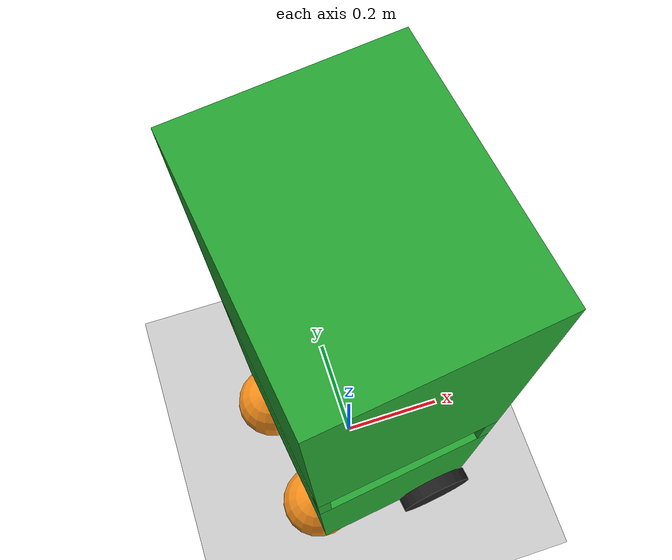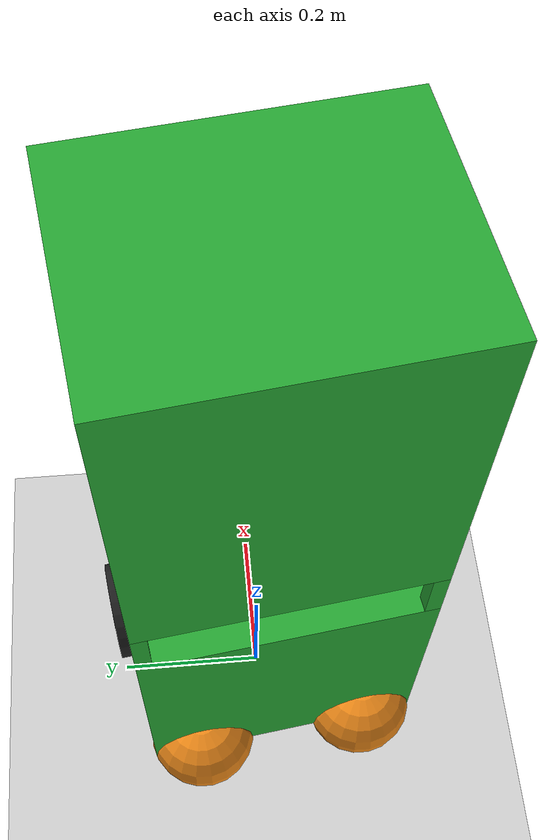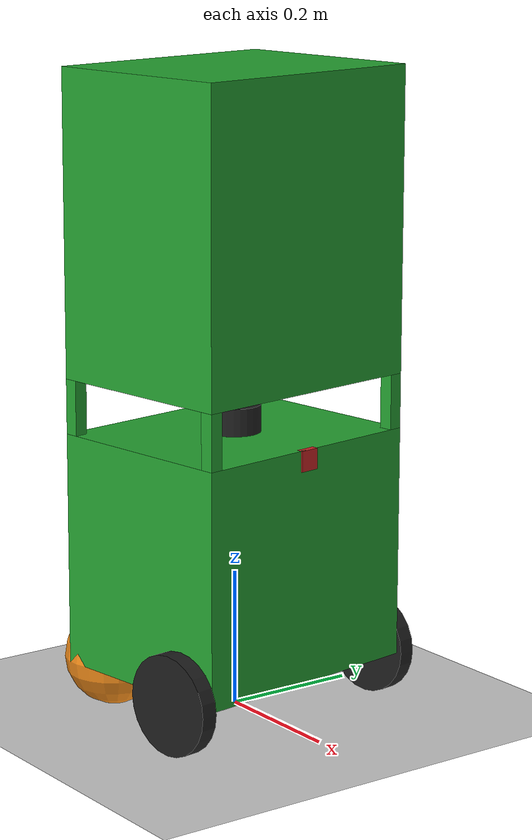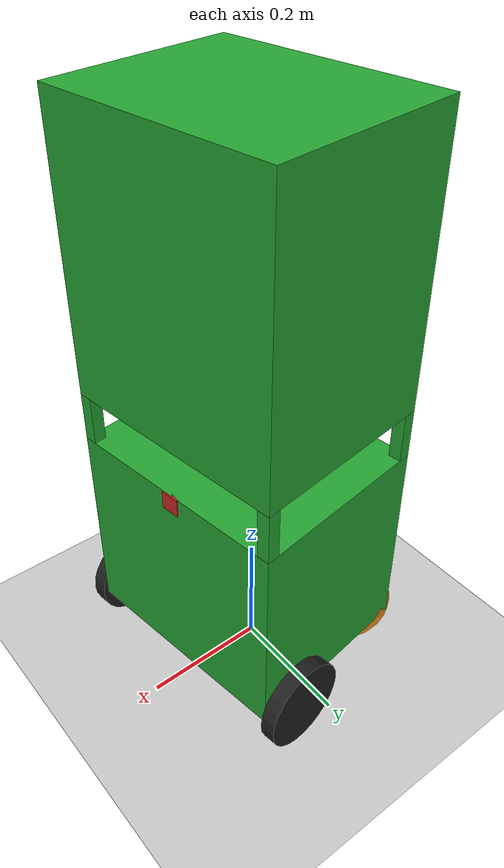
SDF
<sdf version="1.7">
 <world name="default">
  <light name="sun" type="directional">
   <pose>0 0 10 0 -0 0</pose>
   <diffuse>0.8 0.8 0.8 1</diffuse>
   <specular>0.2 0.2 0.2 1</specular>
   <attenuation>
    <range>1000</range>
    <constant>0.9</constant>
    <linear>0.01</linear>
    <quadratic>0.001</quadratic>
   </attenuation>
   <direction>-0.5 0.1 -0.9</direction>
   <spot><inner_angle>0</inner_angle><outer_angle>0</outer_angle><falloff>0</falloff></spot>
  </light>
  <model name="ground_plane">
   <static>1</static>
   <link name="link">
    <collision name="collision">
     <geometry><plane><normal>0 0 1</normal><size>100 100</size></plane></geometry>
     <surface>
      <contact><collide_bitmask>65535</collide_bitmask></contact>
      <friction><ode><mu>100</mu><mu2>50</mu2></ode></friction>
     </surface>
    </collision>
    <visual name="visual">
     <cast_shadows>0</cast_shadows>
     <geometry><plane><normal>0 0 1</normal><size>100 100</size></plane></geometry>
     <material>
      <script><uri>file://media/materials/scripts/gazebo.material</uri><name>Gazebo/Grey</name></script>
     </material>
    </visual>
   </link>
  </model>
  <gravity>0 0 -9.8</gravity>
  <magnetic_field>6e-06 2.3e-05 -4.2e-05</magnetic_field>
  <atmosphere type="adiabatic"/>
  <physics type="ode">
   <max_step_size>0.001</max_step_size>
   <real_time_factor>1</real_time_factor>
   <real_time_update_rate>1000</real_time_update_rate>
  </physics>
  <scene><ambient>0.4 0.4 0.4 1</ambient><background>0.7 0.7 0.7 1</background><shadows>1</shadows></scene>
  <audio><device>default</device></audio>
  <spherical_coordinates>
   <surface_model>EARTH_WGS84</surface_model>
   <latitude_deg>0</latitude_deg>
   <longitude_deg>0</longitude_deg>
   <elevation>0</elevation>
   <heading_deg>0</heading_deg>
  </spherical_coordinates>
  <model name="my_bot">
   <link name="base_link">
    <inertial>
     <pose>-0.087875 0 0.291169 0 -0 0</pose>
     <mass>19.34</mass>
     <inertia>
      <ixx>1.26836</ixx>
      <ixy>3.66243e-19</ixy>
      <ixz>-0.00774508</ixz>
      <iyy>1.19452</iyy>
      <iyz>5.05097e-19</iyz>
      <izz>0.367911</izz>
     </inertia>
    </inertial>
    <collision name="base_link_fixed_joint_lump__chassis_collision">
     <pose>-0.0865 0 0.17 0 -0 0</pose>
     <geometry><box><size>0.3 0.37 0.34</size></box></geometry>
    </collision>
    <collision name="base_link_fixed_joint_lump__chassis2_collision_1">
     <pose>-0.0865 0 0.64 0 -0 0</pose>
     <geometry><box><size>0.3 0.37 0.44</size></box></geometry>
    </collision>
    <collision name="base_link_fixed_joint_lump__laser_frame_collision_2">
     <pose>-0.0865 0 0.36 0 -0 0</pose>
     <geometry><cylinder><length>0.04</length><radius>0.0385</radius></cylinder></geometry>
    </collision>
    <collision name="base_link_fixed_joint_lump__left_caster_wheel_collision_3">
     <pose>-0.2195 0.115 0 0 -0 0</pose>
     <geometry><sphere><radius>0.0725</radius></sphere></geometry>
     <surface><friction><ode><mu>0.001</mu><mu2>0.001</mu2></ode></friction></surface>
    </collision>
    <collision name="base_link_fixed_joint_lump__pedestal1_collision_4">
     <pose>0.0535 0.175 0.38 0 -0 0</pose>
     <geometry><box><size>0.02 0.02 0.08</size></box></geometry>
    </collision>
    <collision name="base_link_fixed_joint_lump__pedestal2_collision_5">
     <pose>0.0535 -0.175 0.38 0 -0 0</pose>
     <geometry><box><size>0.02 0.02 0.08</size></box></geometry>
    </collision>
    <collision name="base_link_fixed_joint_lump__pedestal3_collision_6">
     <pose>-0.2265 0.175 0.38 0 -0 0</pose>
     <geometry><box><size>0.02 0.02 0.08</size></box></geometry>
    </collision>
    <collision name="base_link_fixed_joint_lump__pedestal4_collision_7">
     <pose>-0.2265 -0.175 0.38 0 -0 0</pose>
     <geometry><box><size>0.02 0.02 0.08</size></box></geometry>
    </collision>
    <collision name="base_link_fixed_joint_lump__right_caster_wheel_collision_8">
     <pose>-0.2195 -0.115 0 0 -0 0</pose>
     <geometry><sphere><radius>0.0725</radius></sphere></geometry>
     <surface><friction><ode><mu>0.001</mu><mu2>0.001</mu2></ode></friction></surface>
    </collision>
    <visual name="base_link_fixed_joint_lump__chassis_visual">
     <pose>-0.0865 0 0.17 0 -0 0</pose>
     <geometry><box><size>0.3 0.37 0.34</size></box></geometry>
     <material>
      <script><name>Gazebo/Green</name><uri>file://media/materials/scripts/gazebo.material</uri></script>
     </material>
    </visual>
    <visual name="base_link_fixed_joint_lump__camera_link_visual_1">
     <pose>0.0605 0 0.325 0 -0 0</pose>
     <geometry><box><size>0.01 0.03 0.03</size></box></geometry>
     <material>
      <script><name>Gazebo/Red</name><uri>file://media/materials/scripts/gazebo.material</uri></script>
     </material>
    </visual>
    <visual name="base_link_fixed_joint_lump__chassis2_visual_2">
     <pose>-0.0865 0 0.64 0 -0 0</pose>
     <geometry><box><size>0.3 0.37 0.44</size></box></geometry>
     <material>
      <script><name>Gazebo/Green</name><uri>file://media/materials/scripts/gazebo.material</uri></script>
     </material>
    </visual>
    <visual name="base_link_fixed_joint_lump__laser_frame_visual_3">
     <pose>-0.0865 0 0.36 0 -0 0</pose>
     <geometry><cylinder><length>0.04</length><radius>0.0385</radius></cylinder></geometry>
     <material>
      <script><name>Gazebo/Black</name><uri>file://media/materials/scripts/gazebo.material</uri></script>
     </material>
    </visual>
    <visual name="base_link_fixed_joint_lump__left_caster_wheel_visual_4">
     <pose>-0.2195 0.115 0 0 -0 0</pose>
     <geometry><sphere><radius>0.0725</radius></sphere></geometry>
     <material>
      <script><name>Gazebo/Orange</name><uri>file://media/materials/scripts/gazebo.material</uri></script>
     </material>
    </visual>
    <visual name="base_link_fixed_joint_lump__pedestal1_visual_5">
     <pose>0.0535 0.175 0.38 0 -0 0</pose>
     <geometry><box><size>0.02 0.02 0.08</size></box></geometry>
     <material>
      <script><name>Gazebo/Green</name><uri>file://media/materials/scripts/gazebo.material</uri></script>
     </material>
    </visual>
    <visual name="base_link_fixed_joint_lump__pedestal2_visual_6">
     <pose>0.0535 -0.175 0.38 0 -0 0</pose>
     <geometry><box><size>0.02 0.02 0.08</size></box></geometry>
     <material>
      <script><name>Gazebo/Green</name><uri>file://media/materials/scripts/gazebo.material</uri></script>
     </material>
    </visual>
    <visual name="base_link_fixed_joint_lump__pedestal3_visual_7">
     <pose>-0.2265 0.175 0.38 0 -0 0</pose>
     <geometry><box><size>0.02 0.02 0.08</size></box></geometry>
     <material>
      <script><name>Gazebo/Green</name><uri>file://media/materials/scripts/gazebo.material</uri></script>
     </material>
    </visual>
    <visual name="base_link_fixed_joint_lump__pedestal4_visual_8">
     <pose>-0.2265 -0.175 0.38 0 -0 0</pose>
     <geometry><box><size>0.02 0.02 0.08</size></box></geometry>
     <material>
      <script><name>Gazebo/Green</name><uri>file://media/materials/scripts/gazebo.material</uri></script>
     </material>
    </visual>
    <visual name="base_link_fixed_joint_lump__right_caster_wheel_visual_9">
     <pose>-0.2195 -0.115 0 0 -0 0</pose>
     <geometry><sphere><radius>0.0725</radius></sphere></geometry>
     <material>
      <script><name>Gazebo/Orange</name><uri>file://media/materials/scripts/gazebo.material</uri></script>
     </material>
    </visual>
    <sensor name="camera" type="depth">
     <visualize>1</visualize>
     <update_rate>10</update_rate>
     <camera>
      <horizontal_fov>1.089</horizontal_fov>
      <image><format>B8G8R8</format><width>640</width><height>480</height></image>
      <clip><near>0.05</near><far>8</far></clip>
     </camera>
     <plugin name="camera_controller" filename="libgazebo_ros_camera.so">
      <frame_name>camera_link_optical</frame_name>
      <min_depth>0.1</min_depth>
      <max_depth>100.0</max_depth>
     </plugin>
     <pose>0.0605 0 0.325 0 -0 0</pose>
    </sensor>
    <sensor name="laser" type="ray">
     <visualize>0</visualize>
     <update_rate>10</update_rate>
     <ray>
      <scan>
       <horizontal>
        <samples>360</samples>
        <resolution>1</resolution>
        <min_angle>-3.14</min_angle>
        <max_angle>3.14</max_angle>
       </horizontal>
       <vertical><samples>1</samples><min_angle>0</min_angle><max_angle>0</max_angle></vertical>
      </scan>
      <range><min>0.3</min><max>12</max><resolution>1</resolution></range>
     </ray>
     <plugin name="laser_controller" filename="libgazebo_ros_ray_sensor.so">
      <ros><argument>~/out:=scan</argument></ros>
      <output_type>sensor_msgs/LaserScan</output_type>
      <frame_name>laser_frame</frame_name>
     </plugin>
     <pose>-0.0865 0 0.36 0 -0 0</pose>
    </sensor>
   </link>
   <joint name="left_wheel_joint" type="revolute">
    <pose relative_to="base_link">0 0.1975 0 -1.5708 0 0</pose>
    <parent>base_link</parent>
    <child>left_wheel</child>
    <axis>
     <xyz>0 0 1</xyz>
     <limit><lower>-1e+16</lower><upper>1e+16</upper></limit>
     <dynamics><spring_reference>0</spring_reference><spring_stiffness>0</spring_stiffness></dynamics>
    </axis>
   </joint>
   <link name="left_wheel">
    <pose relative_to="left_wheel_joint">0 0 0 0 -0 0</pose>
    <inertial>
     <mass>0.6</mass>
     <inertia>
      <ixx>0.000819687</ixx>
      <ixy>0</ixy>
      <ixz>0</ixz>
      <iyy>0.000819687</iyy>
      <iyz>0</iyz>
      <izz>0.00157687</izz>
     </inertia>
    </inertial>
    <collision name="left_wheel_collision">
     <geometry><cylinder><length>0.025</length><radius>0.0725</radius></cylinder></geometry>
    </collision>
    <visual name="left_wheel_visual">
     <geometry><cylinder><length>0.025</length><radius>0.0725</radius></cylinder></geometry>
     <material>
      <script><name>Gazebo/Black</name><uri>file://media/materials/scripts/gazebo.material</uri></script>
     </material>
    </visual>
   </link>
   <joint name="right_wheel_joint" type="revolute">
    <pose relative_to="base_link">0 -0.1975 0 1.5708 -0 0</pose>
    <parent>base_link</parent>
    <child>right_wheel</child>
    <axis>
     <xyz>0 0 -1</xyz>
     <limit><lower>-1e+16</lower><upper>1e+16</upper></limit>
     <dynamics><spring_reference>0</spring_reference><spring_stiffness>0</spring_stiffness></dynamics>
    </axis>
   </joint>
   <link name="right_wheel">
    <pose relative_to="right_wheel_joint">0 0 0 0 -0 0</pose>
    <inertial>
     <mass>0.6</mass>
     <inertia>
      <ixx>0.000819687</ixx>
      <ixy>0</ixy>
      <ixz>0</ixz>
      <iyy>0.000819687</iyy>
      <iyz>0</iyz>
      <izz>0.00157687</izz>
     </inertia>
    </inertial>
    <collision name="right_wheel_collision">
     <geometry><cylinder><length>0.025</length><radius>0.0725</radius></cylinder></geometry>
    </collision>
    <visual name="right_wheel_visual">
     <geometry><cylinder><length>0.025</length><radius>0.0725</radius></cylinder></geometry>
     <material>
      <script><name>Gazebo/Black</name><uri>file://media/materials/scripts/gazebo.material</uri></script>
     </material>
    </visual>
   </link>
   <static>0</static>
   <plugin name="diff_drive" filename="libgazebo_ros_diff_drive.so">
    <left_joint>left_wheel_joint</left_joint>
    <right_joint>right_wheel_joint</right_joint>
    <wheel_separation>0.37</wheel_separation>
    <wheel_diameter>0.145</wheel_diameter>
    <max_wheel_torque>200</max_wheel_torque>
    <max_wheel_acceleration>10.0</max_wheel_acceleration>
    <odometry_frame>odom</odometry_frame>
    <robot_base_frame>base_link</robot_base_frame>
    <publish_odom>1</publish_odom>
    <publish_odom_tf>1</publish_odom_tf>
    <publish_wheel_tf>1</publish_wheel_tf>
   </plugin>
   <pose>0.09305 0.004139 0.072499 -4e-06 7e-06 0.133634</pose>
  </model>
 </world>
</sdf>
